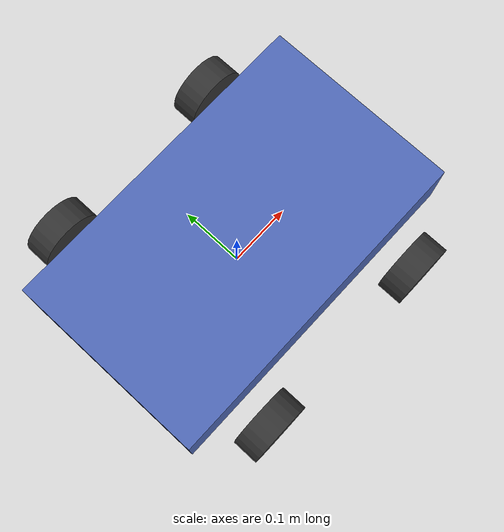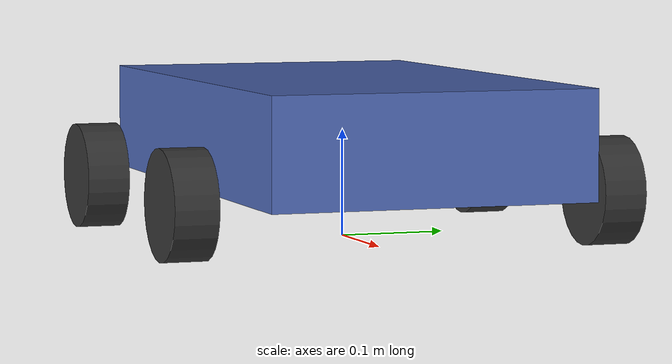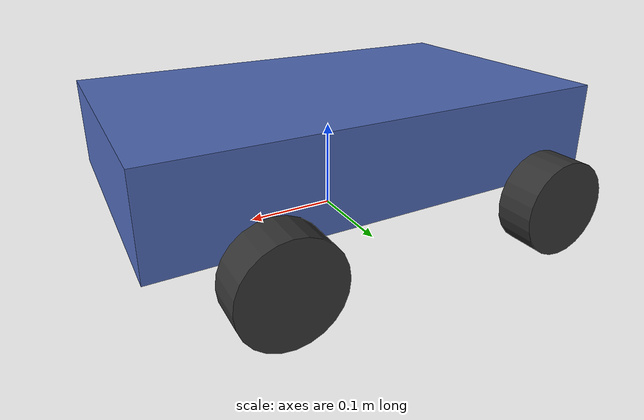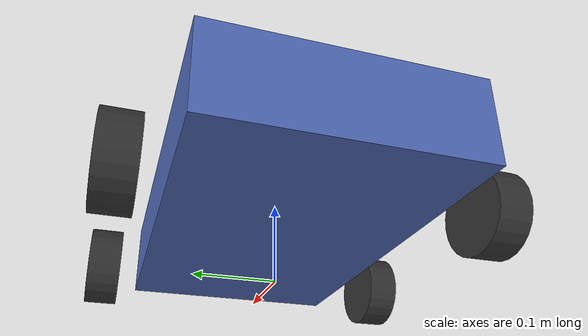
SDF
<?xml version="1.0" ?>
<sdf version="1.9">
  <model name="my_robot">
    <link name="chassis">
      <pose>0 0 0.1 0 0 0</pose>
      <inertial>
        <mass>2.0</mass>
        <inertia>
          <ixx>0.05</ixx>
          <iyy>0.05</iyy>
          <izz>0.05</izz>
        </inertia>
      </inertial>
      <collision name="chassis_collision">
        <geometry>
          <box>
            <size>0.5 0.3 0.1</size>
          </box>
        </geometry>
      </collision>
      <visual name="chassis_visual">
        <geometry>
          <box>
            <size>0.5 0.3 0.1</size>
          </box>
        </geometry>
        <material>
          <ambient>0.2 0.3 0.6 1</ambient>
          <diffuse>0.3 0.4 0.7 1</diffuse>
        </material>
      </visual>
    </link>

    <link name="front_left_wheel">
      <pose>0.15 -0.2 0.05 1.5708 0 0</pose>
      <inertial>
        <mass>0.2</mass>
        <inertia>
          <ixx>0.0001</ixx>
          <iyy>0.0001</iyy>
          <izz>0.0001</izz>
        </inertia>
      </inertial>
      <collision name="fl_collision">
        <geometry>
          <cylinder>
            <radius>0.05</radius>
            <length>0.04</length>
          </cylinder>
        </geometry>
      </collision>
      <visual name="fl_visual">
        <geometry>
          <cylinder>
            <radius>0.05</radius>
            <length>0.04</length>
          </cylinder>
        </geometry>
        <material>
          <ambient>0.1 0.1 0.1 1</ambient>
          <diffuse>0.2 0.2 0.2 1</diffuse>
        </material>
      </visual>
    </link>

    <link name="front_right_wheel">
      <pose>0.15 0.2 0.05 1.5708 0 0</pose>
      <inertial>
        <mass>0.2</mass>
        <inertia>
          <ixx>0.0001</ixx>
          <iyy>0.0001</iyy>
          <izz>0.0001</izz>
        </inertia>
      </inertial>
      <collision name="fr_collision">
        <geometry>
          <cylinder>
            <radius>0.05</radius>
            <length>0.04</length>
          </cylinder>
        </geometry>
      </collision>
      <visual name="fr_visual">
        <geometry>
          <cylinder>
            <radius>0.05</radius>
            <length>0.04</length>
          </cylinder>
        </geometry>
        <material>
          <ambient>0.1 0.1 0.1 1</ambient>
          <diffuse>0.2 0.2 0.2 1</diffuse>
        </material>
      </visual>
    </link>

    <link name="rear_left_wheel">
      <pose>-0.15 -0.2 0.05 1.5708 0 0</pose>
      <inertial>
        <mass>0.2</mass>
        <inertia>
          <ixx>0.0001</ixx>
          <iyy>0.0001</iyy>
          <izz>0.0001</izz>
        </inertia>
      </inertial>
      <collision name="rl_collision">
        <geometry>
          <cylinder>
            <radius>0.05</radius>
            <length>0.04</length>
          </cylinder>
        </geometry>
      </collision>
      <visual name="rl_visual">
        <geometry>
          <cylinder>
            <radius>0.05</radius>
            <length>0.04</length>
          </cylinder>
        </geometry>
        <material>
          <ambient>0.1 0.1 0.1 1</ambient>
          <diffuse>0.2 0.2 0.2 1</diffuse>
        </material>
      </visual>
    </link>

    <link name="rear_right_wheel">
      <pose>-0.15 0.2 0.05 1.5708 0 0</pose>
      <inertial>
        <mass>0.2</mass>
        <inertia>
          <ixx>0.0001</ixx>
          <iyy>0.0001</iyy>
          <izz>0.0001</izz>
        </inertia>
      </inertial>
      <collision name="rr_collision">
        <geometry>
          <cylinder>
            <radius>0.05</radius>
            <length>0.04</length>
          </cylinder>
        </geometry>
      </collision>
      <visual name="rr_visual">
        <geometry>
          <cylinder>
            <radius>0.05</radius>
            <length>0.04</length>
          </cylinder>
        </geometry>
        <material>
          <ambient>0.1 0.1 0.1 1</ambient>
          <diffuse>0.2 0.2 0.2 1</diffuse>
        </material>
      </visual>
    </link>

    <joint name="front_left_wheel_joint" type="revolute">
      <parent>chassis</parent>
      <child>front_left_wheel</child>
      <pose>0.15 -0.2 0.05 0 0 0</pose>
      <axis>
        <xyz expressed-in="__model__">0 1 0</xyz>
        <limit>
          <lower>-1e308</lower>
          <upper>1e308</upper>
        </limit>
      </axis>
    </joint>

    <joint name="front_right_wheel_joint" type="revolute">
      <parent>chassis</parent>
      <child>front_right_wheel</child>
      <pose>0.15 0.2 0.05 0 0 0</pose>
      <axis>
        <xyz expressed-in="__model__">0 1 0</xyz>
        <limit>
          <lower>-1e308</lower>
          <upper>1e308</upper>
        </limit>
      </axis>
    </joint>

    <joint name="rear_left_wheel_joint" type="revolute">
      <parent>chassis</parent>
      <child>rear_left_wheel</child>
      <pose>-0.15 -0.2 0.05 0 0 0</pose>
      <axis>
        <xyz expressed-in="__model__">0 1 0</xyz>
        <limit>
          <lower>-1e308</lower>
          <upper>1e308</upper>
        </limit>
      </axis>
    </joint>

    <joint name="rear_right_wheel_joint" type="revolute">
      <parent>chassis</parent>
      <child>rear_right_wheel</child>
      <pose>-0.15 0.2 0.05 0 0 0</pose>
      <axis>
        <xyz expressed-in="__model__">0 1 0</xyz>
        <limit>
          <lower>-1e308</lower>
          <upper>1e308</upper>
        </limit>
      </axis>
    </joint>

    <plugin filename="gz-sim-diff-drive-system" name="gz::sim::systems::DiffDrive">
      <left_joint>front_left_wheel_joint</left_joint>
      <left_joint>rear_left_wheel_joint</left_joint>
      <right_joint>front_right_wheel_joint</right_joint>
      <right_joint>rear_right_wheel_joint</right_joint>
      <wheel_separation>0.4</wheel_separation>
      <wheel_radius>0.05</wheel_radius>
      <topic>/model/my_robot/cmd_vel</topic>
    </plugin>
  </model>
</sdf>
